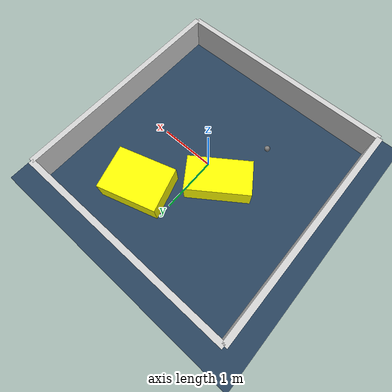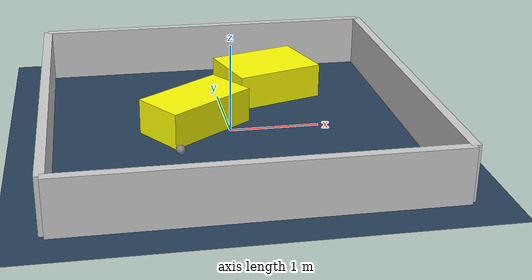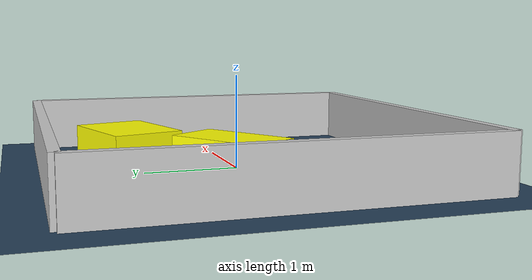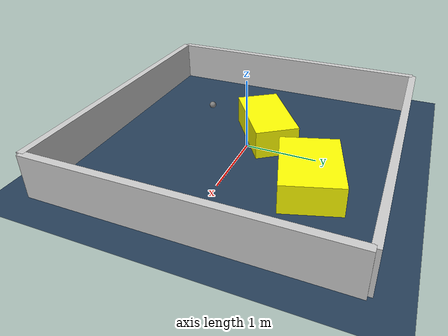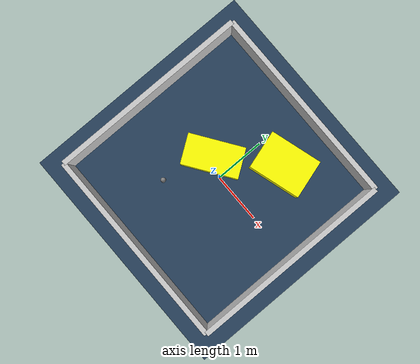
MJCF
<?xml version="1.0" ?>
<mujoco model="generated_environment">
  <option timestep="0.01" integrator="RK4" cone="elliptic"/>
  <default>
    <geom density="1"/>
  </default>
  <asset>
    <texture builtin="gradient" height="3072" rgb1="0.3 0.5 0.7" rgb2="0 0 0" type="skybox" width="512"/>
    <texture builtin="checker" height="300" mark="edge" markrgb="0.8 0.8 0.8" name="groundplane" rgb1="0.2 0.3 0.4" rgb2="0.1 0.2 0.3" type="2d" width="300"/>
    <material name="groundplane" reflectance="0.2" texrepeat="5 5" texture="groundplane" texuniform="true"/>
    <material name="robot" rgba="0.0 1.0 0.0 1"/>
  </asset>
  <worldbody>
    <light dir="0 0 -1" directional="true" pos="0 0 1.5"/>
    <geom condim="4" friction="1.0 0.005 0.001" material="groundplane" name="floor" size="0 0 0.05" type="plane"/>
    <body name="walls">
      <geom name="wall_1" condim="4" pos="-2.0 0.0 0.3" rgba="0.800000011920929 0.800000011920929 0.800000011920929 1.0" size="0.05 2.0 0.3" type="box"/>
      <geom name="wall_2" condim="4" pos="2.0 0.0 0.3" rgba="0.800000011920929 0.800000011920929 0.800000011920929 1.0" size="0.05 2.0 0.3" type="box"/>
      <geom name="wall_3" condim="4" pos="0.0 -2.0 0.3" rgba="0.800000011920929 0.800000011920929 0.800000011920929 1.0" size="2.0 0.05 0.3" type="box"/>
      <geom name="wall_4" condim="4" pos="0.0 2.0 0.3" rgba="0.800000011920929 0.800000011920929 0.800000011920929 1.0" size="2.0 0.05 0.3" type="box"/>
    </body>
    <body name="robot">
      <joint name="joint_x" type="slide" pos="0 0 0" axis="1 0 0"/>
      <joint name="joint_y" type="slide" pos="0 0 0" axis="0 1 0"/>
      <geom name="robot" type="sphere" pos="-0.6398526025905487 -0.8346799669722756 0.2" size="0.05" mass="5." friction="1.0 0.005 0.0001" condim="4"/>
      <site name="sensor_ball"/>
    </body>
    <body name="obstacle_1_movable">
      <geom name="obstacle_1_movable" condim="4" pos="0.6077380359681384 1.0700512341058595 0.2" euler="0 0 106.93320372819933" friction="1.0 0.005 0.001" rgba="1 1 0 1" size="0.3894015682819789 0.5237922840654434 0.2" type="box" mass="0.1"/>
      <joint type="free"/>
    </body>
    <body name="obstacle_2_movable">
      <geom name="obstacle_2_movable" condim="4" pos="-0.36990712120292724 0.16104771274292018 0.2" euler="0 0 304.92967558652407" friction="1.0 0.005 0.001" rgba="1 1 0 1" size="0.3010414727460856 0.5534893204713289 0.2" type="box" mass="0.1"/>
      <joint type="free"/>
    </body>
  </worldbody>
  <actuator>
    <motor name="actuator_x" joint="joint_x" gear="1" ctrlrange="-1 1"/>
    <motor name="actuator_y" joint="joint_y" gear="1" ctrlrange="-1 1"/>
  </actuator>
</mujoco>
